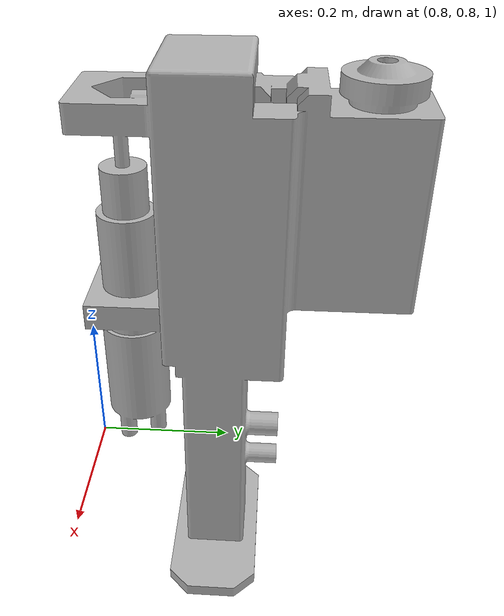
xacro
<?xml version="1.0" ?>
<robot name="Station" xmlns:xacro="http://www.ros.org/wiki/xacro">

<xacro:include filename="$(find Station_description)/urdf/materials.xacro" />
<xacro:include filename="$(find Station_description)/urdf/Station.trans" />
<xacro:include filename="$(find Station_description)/urdf/Station.gazebo" />
<link name="base_link">
  <inertial>
    <origin xyz="6.500489351599395e-06 0.44924220170917684 -0.03063138184253422" rpy="0 0 0"/>
    <mass value="84.44124651406766"/>
    <inertia ixx="2.200006" iyy="0.717611" izz="1.690187" ixy="0.000134" iyz="0.252031" ixz="-7.2e-05"/>
  </inertial>
  <visual>
    <origin xyz="1 1 1" rpy="1.5708 0 0"/>
    <geometry>
      <mesh filename="file://$(find Station_description)/meshes/base_link.stl" scale="0.001 0.001 0.001"/>
    </geometry>
    <material name="silver"/>
  </visual>
  <collision>
    <origin xyz="1 1 1" rpy="1.5708 0 0"/>
    <geometry>
      <mesh filename="file://$(find Station_description)/meshes/base_link.stl" scale="0.001 0.001 0.001"/>
    </geometry>
  </collision>
</link>

</robot>

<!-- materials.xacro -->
<robot name="Station" xmlns:xacro="http://www.ros.org/wiki/xacro" >

<material name="silver">
  <color rgba="0.700 0.700 0.700 1.000"/>
</material>

</robot>

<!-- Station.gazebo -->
<robot name="Station" xmlns:xacro="http://www.ros.org/wiki/xacro" >

<xacro:property name="body_color" value="Gazebo/Silver" />

<gazebo>
  <plugin name="control" filename="libgazebo_ros_control.so"/>
</gazebo>
<gazebo reference="base_link">
  <material>${body_color}</material>
  <mu1>0.2</mu1>
  <mu2>0.2</mu2>
  <self_collide>true</self_collide>
  <gravity>true</gravity>
</gazebo>

</robot>
